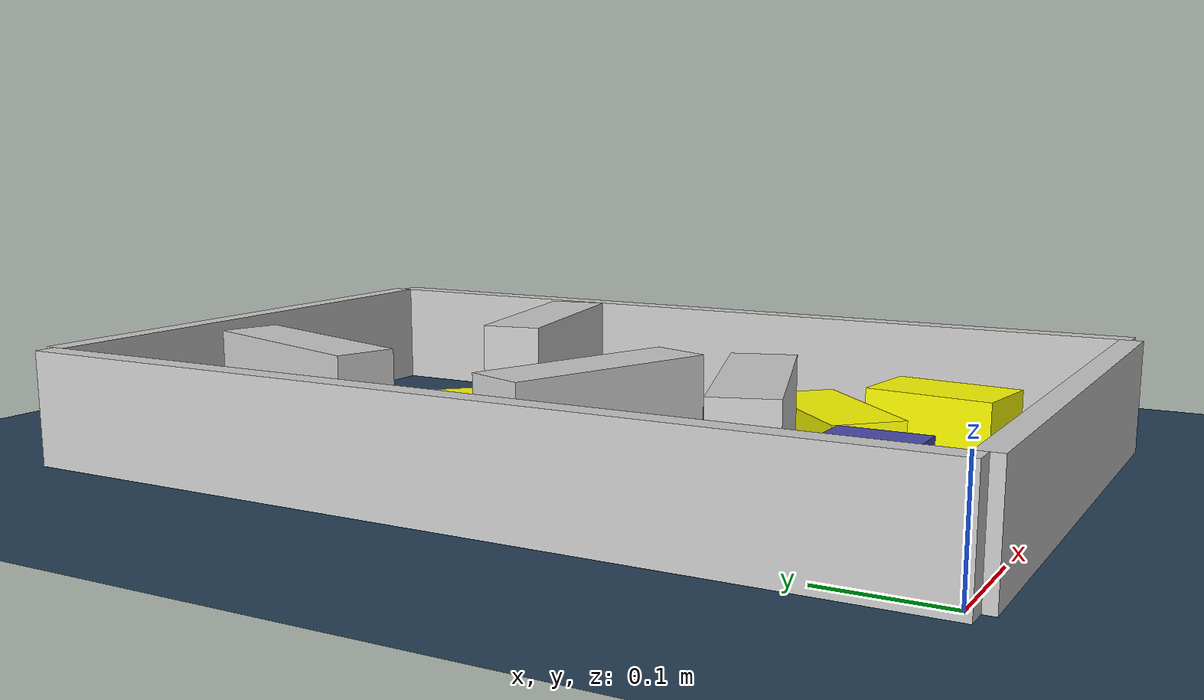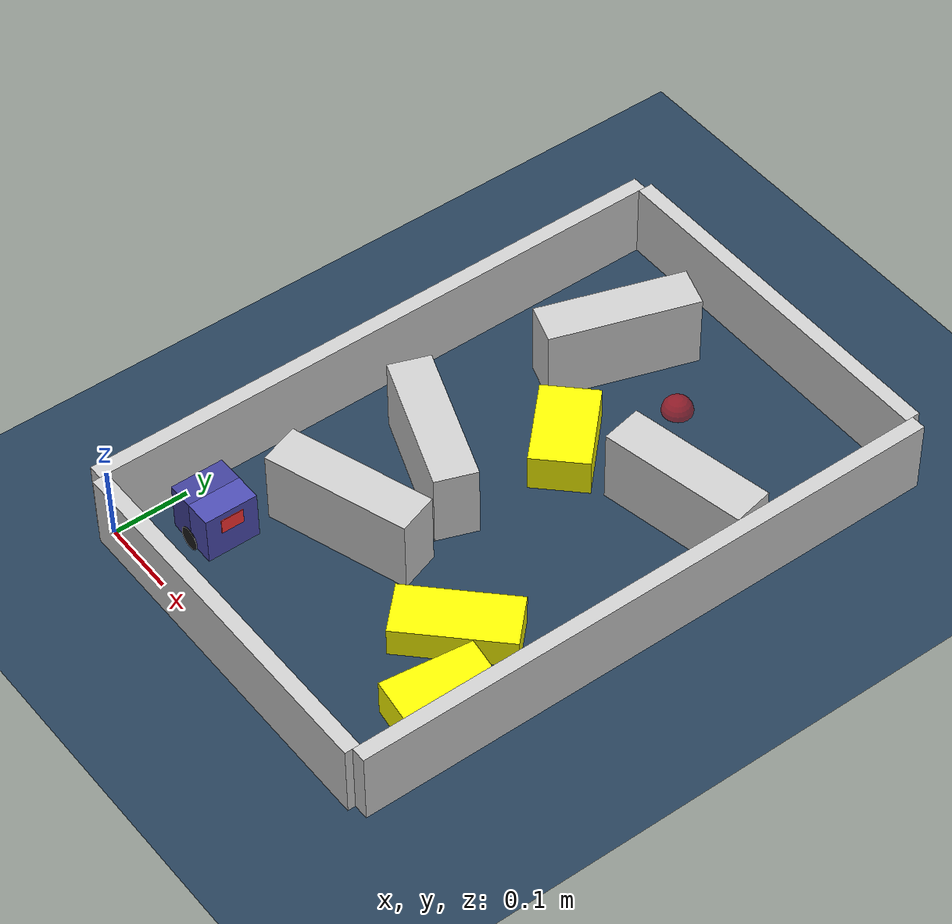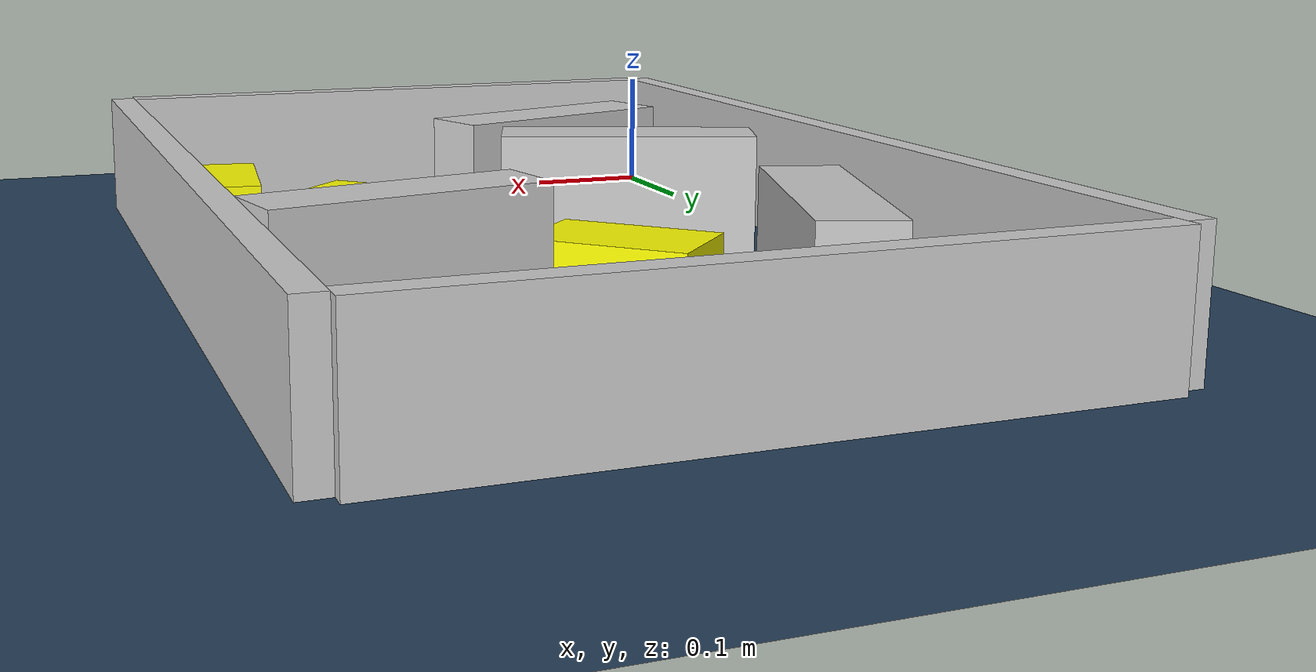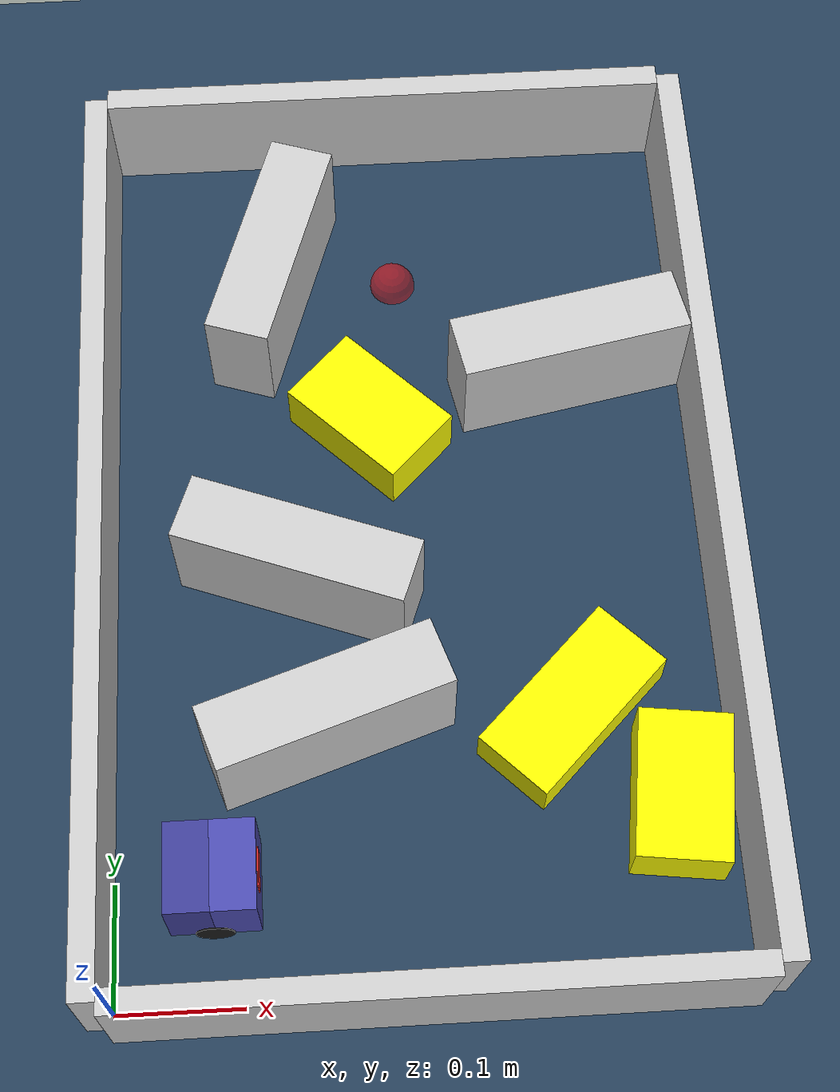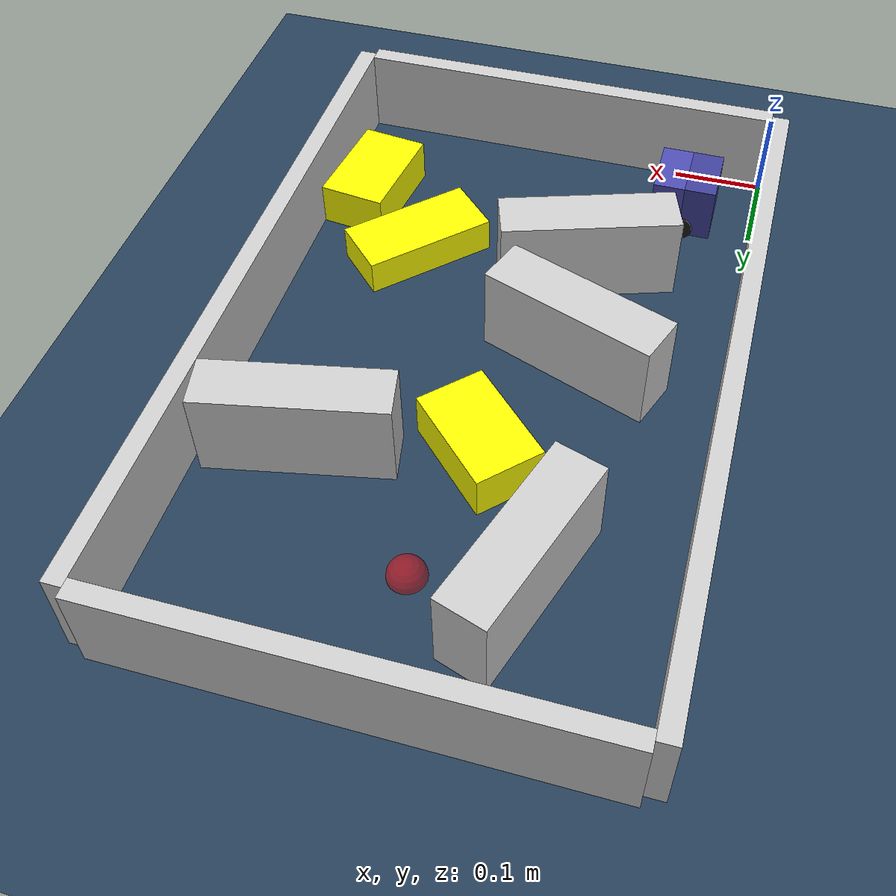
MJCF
<?xml version='1.0' encoding='utf-8'?>
<mujoco model="real_buildable">
  <compiler angle="degree" />
  <option timestep="0.002" integrator="implicitfast" iterations="100" cone="elliptic" />
  <default>
    <geom density="1" />
  </default>
  <asset>
    <texture builtin="gradient" height="3072" rgb1="0.3 0.5 0.7" rgb2="0 0 0" type="skybox" width="512" />
    <texture builtin="checker" height="300" mark="edge" markrgb="0.8 0.8 0.8" name="groundplane" rgb1="0.2 0.3 0.4" rgb2="0.1 0.2 0.3" type="2d" width="300" />
    <material name="groundplane" reflectance="0.2" texrepeat="5 5" texture="groundplane" texuniform="true" />
  </asset>
  <worldbody>
    <light dir="0 0 -1" directional="true" pos="0 0 1.5" />
    <geom name="floor" type="plane" condim="4" friction="0.5 0.005 0.001" material="groundplane" size="0 0 0.05" />
    <body name="walls">
      <geom name="wall_boundary_left" type="box" condim="4" friction="1.0 0.005 0.0001" rgba="0.8 0.8 0.8 1" pos="-0.010000 0.387500 0.050000" euler="0 0 0.000000" size="0.010000 0.397500 0.050000" />
      <geom name="wall_boundary_right" type="box" condim="4" friction="1.0 0.005 0.0001" rgba="0.8 0.8 0.8 1" pos="0.500000 0.387500 0.050000" euler="0 0 0.000000" size="0.010000 0.397500 0.050000" />
      <geom name="wall_boundary_bottom" type="box" condim="4" friction="1.0 0.005 0.0001" rgba="0.8 0.8 0.8 1" pos="0.245000 -0.010000 0.050000" euler="0 0 0.000000" size="0.245000 0.010000 0.050000" />
      <geom name="wall_boundary_top" type="box" condim="4" friction="1.0 0.005 0.0001" rgba="0.8 0.8 0.8 1" pos="0.245000 0.785000 0.050000" euler="0 0 0.000000" size="0.245000 0.010000 0.050000" />
      <geom name="wall_inner_1" type="box" condim="4" friction="1.0 0.005 0.0001" rgba="0.8 0.8 0.8 1" pos="0.171687 0.212678 0.050000" euler="0 0 18.562452" size="0.097500 0.027500 0.050000" />
      <geom name="wall_inner_2" type="box" condim="4" friction="1.0 0.005 0.0001" rgba="0.8 0.8 0.8 1" pos="0.153904 0.345009 0.050000" euler="0 0 -20.359852" size="0.097500 0.027500 0.050000" />
      <geom name="wall_inner_3" type="box" condim="4" friction="1.0 0.005 0.0001" rgba="0.8 0.8 0.8 1" pos="0.389000 0.531000 0.050000" euler="0 0 11.200000" size="0.097500 0.027500 0.050000" />
      <geom name="wall_inner_4" type="box" condim="4" friction="1.0 0.005 0.0001" rgba="0.8 0.8 0.8 1" pos="0.140000 0.630000 0.050000" euler="0 0 71.700000" size="0.097500 0.027500 0.050000" />
    </body>
    <body name="car" pos="0.08 0.09 0.01">
      <freejoint name="car_freejoint" />
      <inertial pos="0 0 0.0375" mass="0.35" diaginertia="0.000266 0.000266 0.000286" />
      <geom name="front_chassis_collision" type="box" pos="0.0175 0 0.0375" size="0.0175 0.035 0.0325" rgba="0.3 0.3 0.7 1" />
      <geom name="rear_chassis_collision" type="box" pos="-0.0175 0 0.0375" size="0.0175 0.035 0.0325" rgba="0.25 0.25 0.6 1" />
      <geom name="front_marker" type="box" pos="0.034 0 0.0505" size="0.002 0.015 0.01" rgba="1 0.2 0.2 1" contype="0" conaffinity="0" />
      <body name="rear_support_body" pos="-0.03 0 0.0025">
        <joint name="rear_caster_joint" type="ball" damping="0.0001" />
        <inertial pos="0 0 0" mass="0.025" diaginertia="0.000001 0.000001 0.000001" />
        <geom name="rear_support" type="sphere" pos="0 0 0" size="0.0025" friction="0 0 0" rgba="0.7 0.1 0.1 1" />
      </body>
      <body name="front_support_body" pos="0.03 0 0.0025">
        <joint name="front_caster_joint" type="ball" damping="0.0001" />
        <inertial pos="0 0 0" mass="0.025" diaginertia="0.000001 0.000001 0.000001" />
        <geom name="front_support" type="sphere" pos="0 0 0" size="0.0025" friction="0 0 0" rgba="0.1 0.7 0.1 1" />
      </body>
      <body name="left_wheel" pos="0 0.0375 0.015">
        <inertial pos="0 0 0" mass="0.05" diaginertia="0.000003 0.000006 0.000003" />
        <joint name="left_wheel_joint" type="hinge" axis="0 1 0" damping="0.01" armature="0.0001" />
        <geom name="left_wheel_collision" type="cylinder" size="0.015 0.0005" euler="90 0 0" rgba="0.1 0.1 0.1 1" />
      </body>
      <body name="right_wheel" pos="0 -0.0375 0.015">
        <inertial pos="0 0 0" mass="0.05" diaginertia="0.000003 0.000006 0.000003" />
        <joint name="right_wheel_joint" type="hinge" axis="0 1 0" damping="0.01" armature="0.0001" />
        <geom name="right_wheel_collision" type="cylinder" size="0.015 0.0005" euler="90 0 0" rgba="0.1 0.1 0.1 1" />
      </body>
    </body>
    <body name="obstacle_0_movable">
      <geom name="obstacle_0_movable" condim="4" pos="0.366609 0.220000 0.020000" euler="0 0 135.057636" friction="1 0.005 0.0001" rgba="1 1 0 1" size="0.035000 0.075000 0.020000" type="box" mass="0.1" />
      <joint type="free" />
    </body>
    <body name="obstacle_1_movable">
      <geom name="obstacle_1_movable" condim="4" pos="0.218000 0.490000 0.025000" euler="0 0 45.400000" friction="1 0.005 0.0001" rgba="1 1 0 1" size="0.037500 0.060000 0.025000" type="box" mass="0.1" />
      <joint type="free" />
    </body>
    <body name="obstacle_2_movable">
      <geom name="obstacle_2_movable" condim="4" pos="0.445062 0.141705 0.025000" euler="0 0 172.766720" friction="1 0.005 0.0001" rgba="1 1 0 1" size="0.037500 0.060000 0.025000" type="box" mass="0.1" />
      <joint type="free" />
    </body>
    <site name="goal" type="sphere" pos="0.245000 0.640000 0.0" size="0.02" rgba="1 0 0 0.5" />
  </worldbody>
  <actuator>
    <velocity name="left_wheel_drive" joint="left_wheel_joint" ctrlrange="-25 25" kv="0.75" forcerange="-0.5 0.5" />
    <velocity name="right_wheel_drive" joint="right_wheel_joint" ctrlrange="-25 25" kv="0.75" forcerange="-0.5 0.5" />
  </actuator>
</mujoco>
